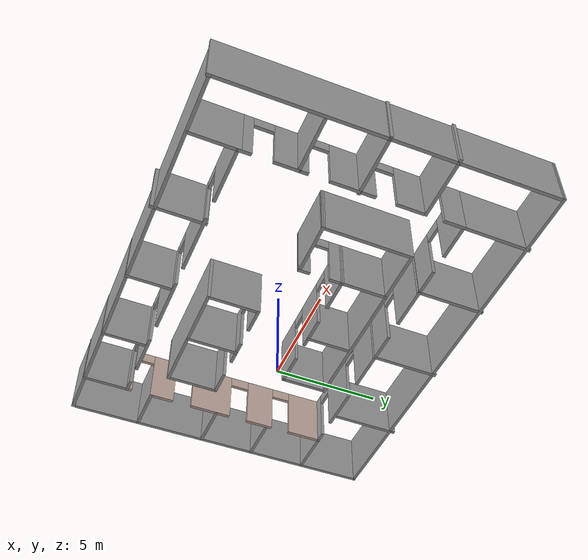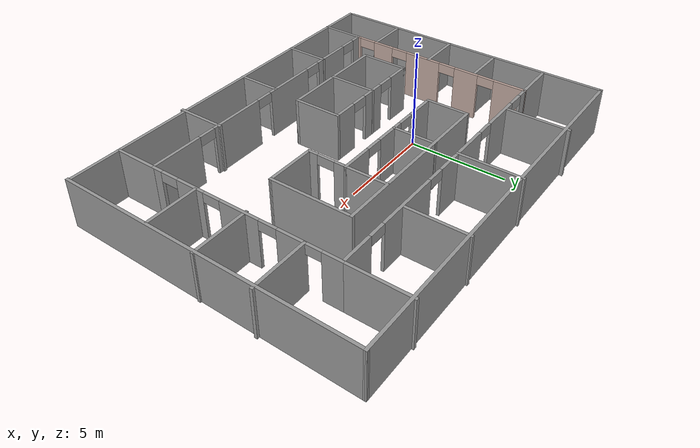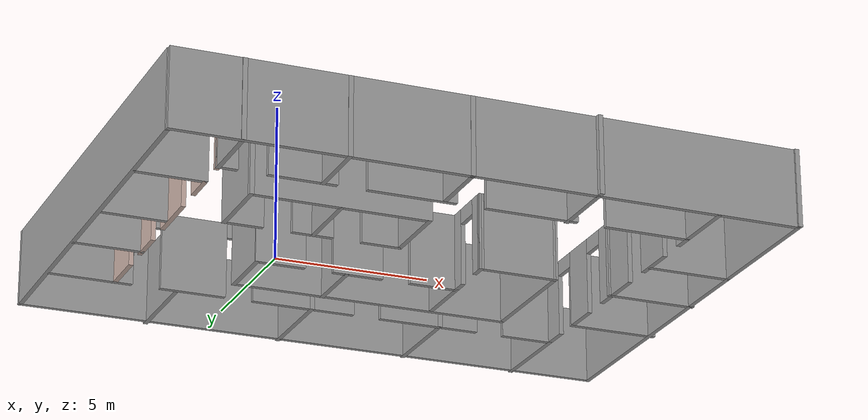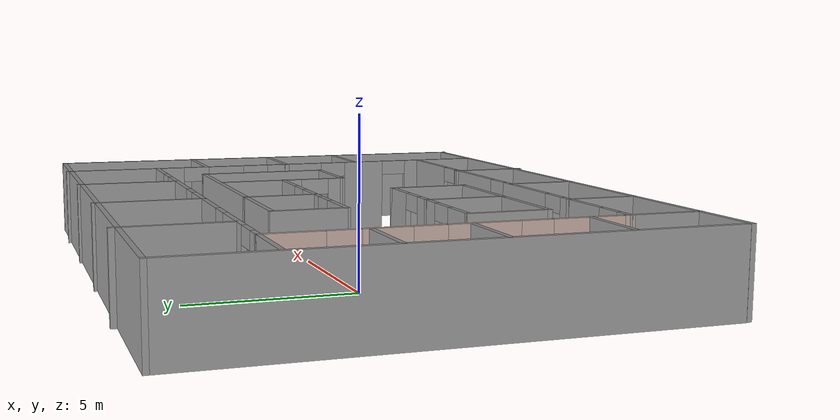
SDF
<?xml version='1.0'?>
<sdf version='1.7'>
  <model name='worlds'>
    <pose>3.85824 -0.689224 0 0 -0 0</pose>
    <link name='Wall_10'>
      <pose>7.08634 -0.417798 0 0 -0 -1.5708</pose>
      <visual name='Wall_10_Visual_0'>
        <pose>-4.49896 0 1.25 0 -0 0</pose>
        <geometry>
          <box>
            <size>1.00207 0.15 2.5</size>
          </box>
        </geometry>
        <material>
          <script>
            <uri>file://media/materials/scripts/gazebo.material</uri>
            <name>Gazebo/Grey</name>
          </script>
          <ambient>1 1 1 1</ambient>
        </material>
        <meta>
          <layer>0</layer>
        </meta>
      </visual>
      <collision name='Wall_10_Collision_0'>
        <geometry>
          <box>
            <size>1.00207 0.15 2.5</size>
          </box>
        </geometry>
        <pose>-4.49896 0 1.25 0 -0 0</pose>
      </collision>
      <visual name='Wall_10_Visual_1'>
        <pose>-2.46294 0 1.25 0 -0 0</pose>
        <geometry>
          <box>
            <size>1.26997 0.15 2.5</size>
          </box>
        </geometry>
        <material>
          <script>
            <uri>file://media/materials/scripts/gazebo.material</uri>
            <name>Gazebo/Grey</name>
          </script>
          <ambient>1 1 1 1</ambient>
        </material>
        <meta>
          <layer>0</layer>
        </meta>
      </visual>
      <collision name='Wall_10_Collision_1'>
        <geometry>
          <box>
            <size>1.26997 0.15 2.5</size>
          </box>
        </geometry>
        <pose>-2.46294 0 1.25 0 -0 0</pose>
      </collision>
      <visual name='Wall_10_Visual_2'>
        <pose>0.096509 0 1.25 0 -0 0</pose>
        <geometry>
          <box>
            <size>2.04893 0.15 2.5</size>
          </box>
        </geometry>
        <material>
          <script>
            <uri>file://media/materials/scripts/gazebo.material</uri>
            <name>Gazebo/Grey</name>
          </script>
          <ambient>1 1 1 1</ambient>
        </material>
        <meta>
          <layer>0</layer>
        </meta>
      </visual>
      <collision name='Wall_10_Collision_2'>
        <geometry>
          <box>
            <size>2.04893 0.15 2.5</size>
          </box>
        </geometry>
        <pose>0.096509 0 1.25 0 -0 0</pose>
      </collision>
      <visual name='Wall_10_Visual_3'>
        <pose>2.76724 0 1.25 0 -0 0</pose>
        <geometry>
          <box>
            <size>1.49253 0.15 2.5</size>
          </box>
        </geometry>
        <material>
          <script>
            <uri>file://media/materials/scripts/gazebo.material</uri>
            <name>Gazebo/Grey</name>
          </script>
          <ambient>1 1 1 1</ambient>
        </material>
        <meta>
          <layer>0</layer>
        </meta>
      </visual>
      <collision name='Wall_10_Collision_3'>
        <geometry>
          <box>
            <size>1.49253 0.15 2.5</size>
          </box>
        </geometry>
        <pose>2.76724 0 1.25 0 -0 0</pose>
      </collision>
      <visual name='Wall_10_Visual_4'>
        <pose>4.70675 0 1.25 0 -0 0</pose>
        <geometry>
          <box>
            <size>0.586492 0.15 2.5</size>
          </box>
        </geometry>
        <material>
          <script>
            <uri>file://media/materials/scripts/gazebo.material</uri>
            <name>Gazebo/Grey</name>
          </script>
          <ambient>1 1 1 1</ambient>
        </material>
        <meta>
          <layer>0</layer>
        </meta>
      </visual>
      <collision name='Wall_10_Collision_4'>
        <geometry>
          <box>
            <size>0.586492 0.15 2.5</size>
          </box>
        </geometry>
        <pose>4.70675 0 1.25 0 -0 0</pose>
      </collision>
      <visual name='Wall_10_Visual_5'>
        <pose>-3.54793 0 2.25 0 -0 0</pose>
        <geometry>
          <box>
            <size>0.9 0.15 0.5</size>
          </box>
        </geometry>
        <material>
          <script>
            <uri>file://media/materials/scripts/gazebo.material</uri>
            <name>Gazebo/Grey</name>
          </script>
          <ambient>1 1 1 1</ambient>
        </material>
        <meta>
          <layer>0</layer>
        </meta>
      </visual>
      <collision name='Wall_10_Collision_5'>
        <geometry>
          <box>
            <size>0.9 0.15 0.5</size>
          </box>
        </geometry>
        <pose>-3.54793 0 2.25 0 -0 0</pose>
      </collision>
      <visual name='Wall_10_Visual_6'>
        <pose>-1.37796 0 2.25 0 -0 0</pose>
        <geometry>
          <box>
            <size>0.9 0.15 0.5</size>
          </box>
        </geometry>
        <material>
          <script>
            <uri>file://media/materials/scripts/gazebo.material</uri>
            <name>Gazebo/Grey</name>
          </script>
          <ambient>1 1 1 1</ambient>
        </material>
        <meta>
          <layer>0</layer>
        </meta>
      </visual>
      <collision name='Wall_10_Collision_6'>
        <geometry>
          <box>
            <size>0.9 0.15 0.5</size>
          </box>
        </geometry>
        <pose>-1.37796 0 2.25 0 -0 0</pose>
      </collision>
      <visual name='Wall_10_Visual_7'>
        <pose>1.57098 0 2.25 0 -0 0</pose>
        <geometry>
          <box>
            <size>0.9 0.15 0.5</size>
          </box>
        </geometry>
        <material>
          <script>
            <uri>file://media/materials/scripts/gazebo.material</uri>
            <name>Gazebo/Grey</name>
          </script>
          <ambient>1 1 1 1</ambient>
        </material>
        <meta>
          <layer>0</layer>
        </meta>
      </visual>
      <collision name='Wall_10_Collision_7'>
        <geometry>
          <box>
            <size>0.9 0.15 0.5</size>
          </box>
        </geometry>
        <pose>1.57098 0 2.25 0 -0 0</pose>
      </collision>
      <visual name='Wall_10_Visual_8'>
        <pose>3.96351 0 2.25 0 -0 0</pose>
        <geometry>
          <box>
            <size>0.9 0.15 0.5</size>
          </box>
        </geometry>
        <material>
          <script>
            <uri>file://media/materials/scripts/gazebo.material</uri>
            <name>Gazebo/Grey</name>
          </script>
          <ambient>1 1 1 1</ambient>
        </material>
        <meta>
          <layer>0</layer>
        </meta>
      </visual>
      <collision name='Wall_10_Collision_8'>
        <geometry>
          <box>
            <size>0.9 0.15 0.5</size>
          </box>
        </geometry>
        <pose>3.96351 0 2.25 0 -0 0</pose>
      </collision>
    </link>
    <link name='Wall_12'>
      <pose>-7.77388 -0.461121 0 0 -0 -1.57285</pose>
      <visual name='Wall_12_Visual_0'>
        <pose>-4.18081 0 1.25 0 -0 0</pose>
        <geometry>
          <box>
            <size>1.72504 0.15 2.5</size>
          </box>
        </geometry>
        <material>
          <script>
            <uri>file://media/materials/scripts/gazebo.material</uri>
            <name>Gazebo/Grey</name>
          </script>
          <ambient>0.760784 0.662745 0.627451 1</ambient>
        </material>
        <meta>
          <layer>0</layer>
        </meta>
      </visual>
      <collision name='Wall_12_Collision_0'>
        <geometry>
          <box>
            <size>1.72504 0.15 2.5</size>
          </box>
        </geometry>
        <pose>-4.18081 0 1.25 0 -0 0</pose>
      </collision>
      <visual name='Wall_12_Visual_1'>
        <pose>-1.7556 0 1.25 0 -0 0</pose>
        <geometry>
          <box>
            <size>1.32538 0.15 2.5</size>
          </box>
        </geometry>
        <material>
          <script>
            <uri>file://media/materials/scripts/gazebo.material</uri>
            <name>Gazebo/Grey</name>
          </script>
          <ambient>0.760784 0.662745 0.627451 1</ambient>
        </material>
        <meta>
          <layer>0</layer>
        </meta>
      </visual>
      <collision name='Wall_12_Collision_1'>
        <geometry>
          <box>
            <size>1.32538 0.15 2.5</size>
          </box>
        </geometry>
        <pose>-1.7556 0 1.25 0 -0 0</pose>
      </collision>
      <visual name='Wall_12_Visual_2'>
        <pose>0.8039 0 1.25 0 -0 0</pose>
        <geometry>
          <box>
            <size>1.99363 0.15 2.5</size>
          </box>
        </geometry>
        <material>
          <script>
            <uri>file://media/materials/scripts/gazebo.material</uri>
            <name>Gazebo/Grey</name>
          </script>
          <ambient>0.760784 0.662745 0.627451 1</ambient>
        </material>
        <meta>
          <layer>0</layer>
        </meta>
      </visual>
      <collision name='Wall_12_Collision_2'>
        <geometry>
          <box>
            <size>1.99363 0.15 2.5</size>
          </box>
        </geometry>
        <pose>0.8039 0 1.25 0 -0 0</pose>
      </collision>
      <visual name='Wall_12_Visual_3'>
        <pose>3.28089 0 1.25 0 -0 0</pose>
        <geometry>
          <box>
            <size>1.16034 0.15 2.5</size>
          </box>
        </geometry>
        <material>
          <script>
            <uri>file://media/materials/scripts/gazebo.material</uri>
            <name>Gazebo/Grey</name>
          </script>
          <ambient>0.760784 0.662745 0.627451 1</ambient>
        </material>
        <meta>
          <layer>0</layer>
        </meta>
      </visual>
      <collision name='Wall_12_Collision_3'>
        <geometry>
          <box>
            <size>1.16034 0.15 2.5</size>
          </box>
        </geometry>
        <pose>3.28089 0 1.25 0 -0 0</pose>
      </collision>
      <visual name='Wall_12_Visual_4'>
        <pose>4.90219 0 1.25 0 -0 0</pose>
        <geometry>
          <box>
            <size>0.282275 0.15 2.5</size>
          </box>
        </geometry>
        <material>
          <script>
            <uri>file://media/materials/scripts/gazebo.material</uri>
            <name>Gazebo/Grey</name>
          </script>
          <ambient>0.760784 0.662745 0.627451 1</ambient>
        </material>
        <meta>
          <layer>0</layer>
        </meta>
      </visual>
      <collision name='Wall_12_Collision_4'>
        <geometry>
          <box>
            <size>0.282275 0.15 2.5</size>
          </box>
        </geometry>
        <pose>4.90219 0 1.25 0 -0 0</pose>
      </collision>
      <visual name='Wall_12_Visual_5'>
        <pose>-2.86829 0 2.25 0 -0 0</pose>
        <geometry>
          <box>
            <size>0.9 0.15 0.5</size>
          </box>
        </geometry>
        <material>
          <script>
            <uri>file://media/materials/scripts/gazebo.material</uri>
            <name>Gazebo/Grey</name>
          </script>
          <ambient>0.760784 0.662745 0.627451 1</ambient>
        </material>
        <meta>
          <layer>0</layer>
        </meta>
      </visual>
      <collision name='Wall_12_Collision_5'>
        <geometry>
          <box>
            <size>0.9 0.15 0.5</size>
          </box>
        </geometry>
        <pose>-2.86829 0 2.25 0 -0 0</pose>
      </collision>
      <visual name='Wall_12_Visual_6'>
        <pose>-0.642915 0 2.25 0 -0 0</pose>
        <geometry>
          <box>
            <size>0.9 0.15 0.5</size>
          </box>
        </geometry>
        <material>
          <script>
            <uri>file://media/materials/scripts/gazebo.material</uri>
            <name>Gazebo/Grey</name>
          </script>
          <ambient>0.760784 0.662745 0.627451 1</ambient>
        </material>
        <meta>
          <layer>0</layer>
        </meta>
      </visual>
      <collision name='Wall_12_Collision_6'>
        <geometry>
          <box>
            <size>0.9 0.15 0.5</size>
          </box>
        </geometry>
        <pose>-0.642915 0 2.25 0 -0 0</pose>
      </collision>
      <visual name='Wall_12_Visual_7'>
        <pose>2.25072 0 2.25 0 -0 0</pose>
        <geometry>
          <box>
            <size>0.9 0.15 0.5</size>
          </box>
        </geometry>
        <material>
          <script>
            <uri>file://media/materials/scripts/gazebo.material</uri>
            <name>Gazebo/Grey</name>
          </script>
          <ambient>0.760784 0.662745 0.627451 1</ambient>
        </material>
        <meta>
          <layer>0</layer>
        </meta>
      </visual>
      <collision name='Wall_12_Collision_7'>
        <geometry>
          <box>
            <size>0.9 0.15 0.5</size>
          </box>
        </geometry>
        <pose>2.25072 0 2.25 0 -0 0</pose>
      </collision>
      <visual name='Wall_12_Visual_8'>
        <pose>4.31106 0 2.25 0 -0 0</pose>
        <geometry>
          <box>
            <size>0.9 0.15 0.5</size>
          </box>
        </geometry>
        <material>
          <script>
            <uri>file://media/materials/scripts/gazebo.material</uri>
            <name>Gazebo/Grey</name>
          </script>
          <ambient>0.760784 0.662745 0.627451 1</ambient>
        </material>
        <meta>
          <layer>0</layer>
        </meta>
      </visual>
      <collision name='Wall_12_Collision_8'>
        <geometry>
          <box>
            <size>0.9 0.15 0.5</size>
          </box>
        </geometry>
        <pose>4.31106 0 2.25 0 -0 0</pose>
      </collision>
    </link>
    <link name='Wall_14'>
      <collision name='Wall_14_Collision'>
        <geometry>
          <box>
            <size>15 0.15 2.5</size>
          </box>
        </geometry>
        <pose>0 0 1.25 0 -0 0</pose>
      </collision>
      <visual name='Wall_14_Visual'>
        <pose>0 0 1.25 0 -0 0</pose>
        <geometry>
          <box>
            <size>15 0.15 2.5</size>
          </box>
        </geometry>
        <material>
          <script>
            <uri>file://media/materials/scripts/gazebo.material</uri>
            <name>Gazebo/Grey</name>
          </script>
          <ambient>1 1 1 1</ambient>
        </material>
        <meta>
          <layer>0</layer>
        </meta>
      </visual>
      <pose>-9.96001 0.085928 0 0 -0 -1.5708</pose>
    </link>
    <link name='Wall_16'>
      <collision name='Wall_16_Collision'>
        <geometry>
          <box>
            <size>20 0.15 2.5</size>
          </box>
        </geometry>
        <pose>0 0 1.25 0 -0 0</pose>
      </collision>
      <visual name='Wall_16_Visual'>
        <pose>0 0 1.25 0 -0 0</pose>
        <geometry>
          <box>
            <size>20 0.15 2.5</size>
          </box>
        </geometry>
        <material>
          <script>
            <uri>file://media/materials/scripts/gazebo.material</uri>
            <name>Gazebo/Grey</name>
          </script>
          <ambient>1 1 1 1</ambient>
        </material>
        <meta>
          <layer>0</layer>
        </meta>
      </visual>
      <pose>-0.035012 7.51093 0 0 -0 0</pose>
    </link>
    <link name='Wall_18'>
      <collision name='Wall_18_Collision'>
        <geometry>
          <box>
            <size>15.2354 0.15 2.5</size>
          </box>
        </geometry>
        <pose>0 0 1.25 0 -0 0</pose>
      </collision>
      <visual name='Wall_18_Visual'>
        <pose>0 0 1.25 0 -0 0</pose>
        <geometry>
          <box>
            <size>15.2354 0.15 2.5</size>
          </box>
        </geometry>
        <material>
          <script>
            <uri>file://media/materials/scripts/gazebo.material</uri>
            <name>Gazebo/Grey</name>
          </script>
          <ambient>1 1 1 1</ambient>
        </material>
        <meta>
          <layer>0</layer>
        </meta>
      </visual>
      <pose>9.80829 -0.031344 0 0 -0 -1.58163</pose>
    </link>
    <link name='Wall_19'>
      <collision name='Wall_19_Collision'>
        <geometry>
          <box>
            <size>19.75 0.15 2.5</size>
          </box>
        </geometry>
        <pose>0 0 1.25 0 -0 0</pose>
      </collision>
      <visual name='Wall_19_Visual'>
        <pose>0 0 1.25 0 -0 0</pose>
        <geometry>
          <box>
            <size>19.75 0.15 2.5</size>
          </box>
        </geometry>
        <material>
          <script>
            <uri>file://media/materials/scripts/gazebo.material</uri>
            <name>Gazebo/Grey</name>
          </script>
          <ambient>1 1 1 1</ambient>
        </material>
        <meta>
          <layer>0</layer>
        </meta>
      </visual>
      <pose>-0.134737 -7.51228 0 0 -0 3.14159</pose>
    </link>
    <link name='Wall_21'>
      <collision name='Wall_21_Collision'>
        <geometry>
          <box>
            <size>3.25 0.15 2.5</size>
          </box>
        </geometry>
        <pose>0 0 1.25 0 -0 0</pose>
      </collision>
      <visual name='Wall_21_Visual'>
        <pose>0 0 1.25 0 -0 0</pose>
        <geometry>
          <box>
            <size>3.25 0.15 2.5</size>
          </box>
        </geometry>
        <material>
          <script>
            <uri>file://media/materials/scripts/gazebo.material</uri>
            <name>Gazebo/Grey</name>
          </script>
          <ambient>1 1 1 1</ambient>
        </material>
        <meta>
          <layer>0</layer>
        </meta>
      </visual>
      <pose>-5.73967 6.12837 0 0 -0 1.5708</pose>
    </link>
    <link name='Wall_25'>
      <collision name='Wall_25_Collision'>
        <geometry>
          <box>
            <size>3.25 0.15 2.5</size>
          </box>
        </geometry>
        <pose>0 0 1.25 0 -0 0</pose>
      </collision>
      <visual name='Wall_25_Visual'>
        <pose>0 0 1.25 0 -0 0</pose>
        <geometry>
          <box>
            <size>3.25 0.15 2.5</size>
          </box>
        </geometry>
        <material>
          <script>
            <uri>file://media/materials/scripts/gazebo.material</uri>
            <name>Gazebo/Grey</name>
          </script>
          <ambient>1 1 1 1</ambient>
        </material>
        <meta>
          <layer>0</layer>
        </meta>
      </visual>
      <pose>-1.24283 6.05431 0 0 -0 1.5708</pose>
    </link>
    <link name='Wall_27'>
      <collision name='Wall_27_Collision'>
        <geometry>
          <box>
            <size>3.25 0.15 2.5</size>
          </box>
        </geometry>
        <pose>0 0 1.25 0 -0 0</pose>
      </collision>
      <visual name='Wall_27_Visual'>
        <pose>0 0 1.25 0 -0 0</pose>
        <geometry>
          <box>
            <size>3.25 0.15 2.5</size>
          </box>
        </geometry>
        <material>
          <script>
            <uri>file://media/materials/scripts/gazebo.material</uri>
            <name>Gazebo/Grey</name>
          </script>
          <ambient>1 1 1 1</ambient>
        </material>
        <meta>
          <layer>0</layer>
        </meta>
      </visual>
      <pose>3.16253 6.04065 0 0 -0 -1.5708</pose>
    </link>
    <link name='Wall_29'>
      <collision name='Wall_29_Collision'>
        <geometry>
          <box>
            <size>3.25 0.15 2.5</size>
          </box>
        </geometry>
        <pose>0 0 1.25 0 -0 0</pose>
      </collision>
      <visual name='Wall_29_Visual'>
        <pose>0 0 1.25 0 -0 0</pose>
        <geometry>
          <box>
            <size>3.25 0.15 2.5</size>
          </box>
        </geometry>
        <material>
          <script>
            <uri>file://media/materials/scripts/gazebo.material</uri>
            <name>Gazebo/Grey</name>
          </script>
          <ambient>1 1 1 1</ambient>
        </material>
        <meta>
          <layer>0</layer>
        </meta>
      </visual>
      <pose>7.08634 6.0572 0 0 -0 1.5708</pose>
    </link>
    <link name='Wall_31'>
      <collision name='Wall_31_Collision'>
        <geometry>
          <box>
            <size>3 0.15 2.5</size>
          </box>
        </geometry>
        <pose>0 0 1.25 0 -0 0</pose>
      </collision>
      <visual name='Wall_31_Visual'>
        <pose>0 0 1.25 0 -0 0</pose>
        <geometry>
          <box>
            <size>3 0.15 2.5</size>
          </box>
        </geometry>
        <material>
          <script>
            <uri>file://media/materials/scripts/gazebo.material</uri>
            <name>Gazebo/Grey</name>
          </script>
          <ambient>1 1 1 1</ambient>
        </material>
        <meta>
          <layer>0</layer>
        </meta>
      </visual>
      <pose>8.53501 2.74602 0 0 -0 0</pose>
    </link>
    <link name='Wall_33'>
      <collision name='Wall_33_Collision'>
        <geometry>
          <box>
            <size>3 0.15 2.5</size>
          </box>
        </geometry>
        <pose>0 0 1.25 0 -0 0</pose>
      </collision>
      <visual name='Wall_33_Visual'>
        <pose>0 0 1.25 0 -0 0</pose>
        <geometry>
          <box>
            <size>3 0.15 2.5</size>
          </box>
        </geometry>
        <material>
          <script>
            <uri>file://media/materials/scripts/gazebo.material</uri>
            <name>Gazebo/Grey</name>
          </script>
          <ambient>1 1 1 1</ambient>
        </material>
        <meta>
          <layer>0</layer>
        </meta>
      </visual>
      <pose>8.4453 -0.214591 0 0 -0 0</pose>
    </link>
    <link name='Wall_35'>
      <collision name='Wall_35_Collision'>
        <geometry>
          <box>
            <size>2.75 0.15 2.5</size>
          </box>
        </geometry>
        <pose>0 0 1.25 0 -0 0</pose>
      </collision>
      <visual name='Wall_35_Visual'>
        <pose>0 0 1.25 0 -0 0</pose>
        <geometry>
          <box>
            <size>2.75 0.15 2.5</size>
          </box>
        </geometry>
        <material>
          <script>
            <uri>file://media/materials/scripts/gazebo.material</uri>
            <name>Gazebo/Grey</name>
          </script>
          <ambient>1 1 1 1</ambient>
        </material>
        <meta>
          <layer>0</layer>
        </meta>
      </visual>
      <pose>8.45487 -2.8612 0 0 -0 0</pose>
    </link>
    <link name='Wall_37'>
      <collision name='Wall_37_Collision'>
        <geometry>
          <box>
            <size>2.25 0.15 2.5</size>
          </box>
        </geometry>
        <pose>0 0 1.25 0 -0 0</pose>
      </collision>
      <visual name='Wall_37_Visual'>
        <pose>0 0 1.25 0 -0 0</pose>
        <geometry>
          <box>
            <size>2.25 0.15 2.5</size>
          </box>
        </geometry>
        <material>
          <script>
            <uri>file://media/materials/scripts/gazebo.material</uri>
            <name>Gazebo/Grey</name>
          </script>
          <ambient>1 1 1 1</ambient>
        </material>
        <meta>
          <layer>0</layer>
        </meta>
      </visual>
      <pose>7.08634 -6.3928 0 0 -0 -1.5708</pose>
    </link>
    <link name='Wall_39'>
      <collision name='Wall_39_Collision'>
        <geometry>
          <box>
            <size>2.5 0.15 2.5</size>
          </box>
        </geometry>
        <pose>0 0 1.25 0 -0 0</pose>
      </collision>
      <visual name='Wall_39_Visual'>
        <pose>0 0 1.25 0 -0 0</pose>
        <geometry>
          <box>
            <size>2.5 0.15 2.5</size>
          </box>
        </geometry>
        <material>
          <script>
            <uri>file://media/materials/scripts/gazebo.material</uri>
            <name>Gazebo/Grey</name>
          </script>
          <ambient>1 1 1 1</ambient>
        </material>
        <meta>
          <layer>0</layer>
        </meta>
      </visual>
      <pose>3.16253 -6.50337 0 0 -0 -1.5708</pose>
    </link>
    <link name='Wall_41'>
      <collision name='Wall_41_Collision'>
        <geometry>
          <box>
            <size>2.25 0.15 2.5</size>
          </box>
        </geometry>
        <pose>0 0 1.25 0 -0 0</pose>
      </collision>
      <visual name='Wall_41_Visual'>
        <pose>0 0 1.25 0 -0 0</pose>
        <geometry>
          <box>
            <size>2.25 0.15 2.5</size>
          </box>
        </geometry>
        <material>
          <script>
            <uri>file://media/materials/scripts/gazebo.material</uri>
            <name>Gazebo/Grey</name>
          </script>
          <ambient>1 1 1 1</ambient>
        </material>
        <meta>
          <layer>0</layer>
        </meta>
      </visual>
      <pose>-0.829803 -6.46809 0 0 -0 -1.5708</pose>
    </link>
    <link name='Wall_43'>
      <collision name='Wall_43_Collision'>
        <geometry>
          <box>
            <size>2.25 0.15 2.5</size>
          </box>
        </geometry>
        <pose>0 0 1.25 0 -0 0</pose>
      </collision>
      <visual name='Wall_43_Visual'>
        <pose>0 0 1.25 0 -0 0</pose>
        <geometry>
          <box>
            <size>2.25 0.15 2.5</size>
          </box>
        </geometry>
        <material>
          <script>
            <uri>file://media/materials/scripts/gazebo.material</uri>
            <name>Gazebo/Grey</name>
          </script>
          <ambient>1 1 1 1</ambient>
        </material>
        <meta>
          <layer>0</layer>
        </meta>
      </visual>
      <pose>-4.59785 -6.46809 0 0 -0 -1.5708</pose>
    </link>
    <link name='Wall_45'>
      <collision name='Wall_45_Collision'>
        <geometry>
          <box>
            <size>2.25 0.15 2.5</size>
          </box>
        </geometry>
        <pose>0 0 1.25 0 -0 0</pose>
      </collision>
      <visual name='Wall_45_Visual'>
        <pose>0 0 1.25 0 -0 0</pose>
        <geometry>
          <box>
            <size>2.25 0.15 2.5</size>
          </box>
        </geometry>
        <material>
          <script>
            <uri>file://media/materials/scripts/gazebo.material</uri>
            <name>Gazebo/Grey</name>
          </script>
          <ambient>1 1 1 1</ambient>
        </material>
        <meta>
          <layer>0</layer>
        </meta>
      </visual>
      <pose>-7.7841 -6.47944 0 0 -0 -1.5708</pose>
    </link>
    <link name='Wall_49'>
      <collision name='Wall_49_Collision'>
        <geometry>
          <box>
            <size>2.25 0.15 2.5</size>
          </box>
        </geometry>
        <pose>0 0 1.25 0 -0 0</pose>
      </collision>
      <visual name='Wall_49_Visual'>
        <pose>0 0 1.25 0 -0 0</pose>
        <geometry>
          <box>
            <size>2.25 0.15 2.5</size>
          </box>
        </geometry>
        <material>
          <script>
            <uri>file://media/materials/scripts/gazebo.material</uri>
            <name>Gazebo/Grey</name>
          </script>
          <ambient>1 1 1 1</ambient>
        </material>
        <meta>
          <layer>0</layer>
        </meta>
      </visual>
      <pose>-8.83275 -4.25178 0 0 -0 3.14159</pose>
    </link>
    <link name='Wall_53'>
      <collision name='Wall_53_Collision'>
        <geometry>
          <box>
            <size>2.25 0.15 2.5</size>
          </box>
        </geometry>
        <pose>0 0 1.25 0 -0 0</pose>
      </collision>
      <visual name='Wall_53_Visual'>
        <pose>0 0 1.25 0 -0 0</pose>
        <geometry>
          <box>
            <size>2.25 0.15 2.5</size>
          </box>
        </geometry>
        <material>
          <script>
            <uri>file://media/materials/scripts/gazebo.material</uri>
            <name>Gazebo/Grey</name>
          </script>
          <ambient>1 1 1 1</ambient>
        </material>
        <meta>
          <layer>0</layer>
        </meta>
      </visual>
      <pose>-8.84106 -0.932314 0 0 -0 0</pose>
    </link>
    <link name='Wall_55'>
      <collision name='Wall_55_Collision'>
        <geometry>
          <box>
            <size>2.25 0.15 2.5</size>
          </box>
        </geometry>
        <pose>0 0 1.25 0 -0 0</pose>
      </collision>
      <visual name='Wall_55_Visual'>
        <pose>0 0 1.25 0 -0 0</pose>
        <geometry>
          <box>
            <size>2.25 0.15 2.5</size>
          </box>
        </geometry>
        <material>
          <script>
            <uri>file://media/materials/scripts/gazebo.material</uri>
            <name>Gazebo/Grey</name>
          </script>
          <ambient>1 1 1 1</ambient>
        </material>
        <meta>
          <layer>0</layer>
        </meta>
      </visual>
      <pose>-8.84106 1.71429 0 0 -0 0</pose>
    </link>
    <link name='Wall_57'>
      <collision name='Wall_57_Collision'>
        <geometry>
          <box>
            <size>2.23258 0.15 2.5</size>
          </box>
        </geometry>
        <pose>0 0 1.25 0 -0 0</pose>
      </collision>
      <visual name='Wall_57_Visual'>
        <pose>0 0 1.25 0 -0 0</pose>
        <geometry>
          <box>
            <size>2.23258 0.15 2.5</size>
          </box>
        </geometry>
        <material>
          <script>
            <uri>file://media/materials/scripts/gazebo.material</uri>
            <name>Gazebo/Grey</name>
          </script>
          <ambient>1 1 1 1</ambient>
        </material>
        <meta>
          <layer>0</layer>
        </meta>
      </visual>
      <pose>-8.80493 4.50134 0 0 -0 0.005634</pose>
    </link>
    <link name='Wall_59'>
      <collision name='Wall_59_Collision'>
        <geometry>
          <box>
            <size>9.25 0.15 2.5</size>
          </box>
        </geometry>
        <pose>0 0 1.25 0 -0 0</pose>
      </collision>
      <visual name='Wall_59_Visual'>
        <pose>0 0 1.25 0 -0 0</pose>
        <geometry>
          <box>
            <size>9.25 0.15 2.5</size>
          </box>
        </geometry>
        <material>
          <script>
            <uri>file://media/materials/scripts/gazebo.material</uri>
            <name>Gazebo/Grey</name>
          </script>
          <ambient>1 1 1 1</ambient>
        </material>
        <meta>
          <layer>0</layer>
        </meta>
      </visual>
      <pose>0.280194 3.27344 0 0 -0 0</pose>
    </link>
    <link name='Wall_6'>
      <pose>-0.338657 4.5072 0 0 -0 0</pose>
      <visual name='Wall_6_Visual_0'>
        <pose>-7.18514 0 1.25 0 -0 0</pose>
        <geometry>
          <box>
            <size>0.629721 0.15 2.5</size>
          </box>
        </geometry>
        <material>
          <script>
            <uri>file://media/materials/scripts/gazebo.material</uri>
            <name>Gazebo/Grey</name>
          </script>
          <ambient>1 1 1 1</ambient>
        </material>
        <meta>
          <layer>0</layer>
        </meta>
      </visual>
      <collision name='Wall_6_Collision_0'>
        <geometry>
          <box>
            <size>0.629721 0.15 2.5</size>
          </box>
        </geometry>
        <pose>-7.18514 0 1.25 0 -0 0</pose>
      </collision>
      <visual name='Wall_6_Visual_1'>
        <pose>-4.89017 0 1.25 0 -0 0</pose>
        <geometry>
          <box>
            <size>2.16021 0.15 2.5</size>
          </box>
        </geometry>
        <material>
          <script>
            <uri>file://media/materials/scripts/gazebo.material</uri>
            <name>Gazebo/Grey</name>
          </script>
          <ambient>1 1 1 1</ambient>
        </material>
        <meta>
          <layer>0</layer>
        </meta>
      </visual>
      <collision name='Wall_6_Collision_1'>
        <geometry>
          <box>
            <size>2.16021 0.15 2.5</size>
          </box>
        </geometry>
        <pose>-4.89017 0 1.25 0 -0 0</pose>
      </collision>
      <visual name='Wall_6_Visual_2'>
        <pose>-1.19009 0 1.25 0 -0 0</pose>
        <geometry>
          <box>
            <size>3.43994 0.15 2.5</size>
          </box>
        </geometry>
        <material>
          <script>
            <uri>file://media/materials/scripts/gazebo.material</uri>
            <name>Gazebo/Grey</name>
          </script>
          <ambient>1 1 1 1</ambient>
        </material>
        <meta>
          <layer>0</layer>
        </meta>
      </visual>
      <collision name='Wall_6_Collision_2'>
        <geometry>
          <box>
            <size>3.43994 0.15 2.5</size>
          </box>
        </geometry>
        <pose>-1.19009 0 1.25 0 -0 0</pose>
      </collision>
      <visual name='Wall_6_Visual_3'>
        <pose>3.12203 0 1.25 0 -0 0</pose>
        <geometry>
          <box>
            <size>3.3843 0.15 2.5</size>
          </box>
        </geometry>
        <material>
          <script>
            <uri>file://media/materials/scripts/gazebo.material</uri>
            <name>Gazebo/Grey</name>
          </script>
          <ambient>1 1 1 1</ambient>
        </material>
        <meta>
          <layer>0</layer>
        </meta>
      </visual>
      <collision name='Wall_6_Collision_3'>
        <geometry>
          <box>
            <size>3.3843 0.15 2.5</size>
          </box>
        </geometry>
        <pose>3.12203 0 1.25 0 -0 0</pose>
      </collision>
      <visual name='Wall_6_Visual_4'>
        <pose>6.60709 0 1.25 0 -0 0</pose>
        <geometry>
          <box>
            <size>1.78582 0.15 2.5</size>
          </box>
        </geometry>
        <material>
          <script>
            <uri>file://media/materials/scripts/gazebo.material</uri>
            <name>Gazebo/Grey</name>
          </script>
          <ambient>1 1 1 1</ambient>
        </material>
        <meta>
          <layer>0</layer>
        </meta>
      </visual>
      <collision name='Wall_6_Collision_4'>
        <geometry>
          <box>
            <size>1.78582 0.15 2.5</size>
          </box>
        </geometry>
        <pose>6.60709 0 1.25 0 -0 0</pose>
      </collision>
      <visual name='Wall_6_Visual_5'>
        <pose>-6.42028 0 2.25 0 -0 0</pose>
        <geometry>
          <box>
            <size>0.9 0.15 0.5</size>
          </box>
        </geometry>
        <material>
          <script>
            <uri>file://media/materials/scripts/gazebo.material</uri>
            <name>Gazebo/Grey</name>
          </script>
          <ambient>1 1 1 1</ambient>
        </material>
        <meta>
          <layer>0</layer>
        </meta>
      </visual>
      <collision name='Wall_6_Collision_5'>
        <geometry>
          <box>
            <size>0.9 0.15 0.5</size>
          </box>
        </geometry>
        <pose>-6.42028 0 2.25 0 -0 0</pose>
      </collision>
      <visual name='Wall_6_Visual_6'>
        <pose>-3.36006 0 2.25 0 -0 0</pose>
        <geometry>
          <box>
            <size>0.9 0.15 0.5</size>
          </box>
        </geometry>
        <material>
          <script>
            <uri>file://media/materials/scripts/gazebo.material</uri>
            <name>Gazebo/Grey</name>
          </script>
          <ambient>1 1 1 1</ambient>
        </material>
        <meta>
          <layer>0</layer>
        </meta>
      </visual>
      <collision name='Wall_6_Collision_6'>
        <geometry>
          <box>
            <size>0.9 0.15 0.5</size>
          </box>
        </geometry>
        <pose>-3.36006 0 2.25 0 -0 0</pose>
      </collision>
      <visual name='Wall_6_Visual_7'>
        <pose>0.979877 0 2.25 0 -0 0</pose>
        <geometry>
          <box>
            <size>0.9 0.15 0.5</size>
          </box>
        </geometry>
        <material>
          <script>
            <uri>file://media/materials/scripts/gazebo.material</uri>
            <name>Gazebo/Grey</name>
          </script>
          <ambient>1 1 1 1</ambient>
        </material>
        <meta>
          <layer>0</layer>
        </meta>
      </visual>
      <collision name='Wall_6_Collision_7'>
        <geometry>
          <box>
            <size>0.9 0.15 0.5</size>
          </box>
        </geometry>
        <pose>0.979877 0 2.25 0 -0 0</pose>
      </collision>
      <visual name='Wall_6_Visual_8'>
        <pose>5.26418 0 2.25 0 -0 0</pose>
        <geometry>
          <box>
            <size>0.9 0.15 0.5</size>
          </box>
        </geometry>
        <material>
          <script>
            <uri>file://media/materials/scripts/gazebo.material</uri>
            <name>Gazebo/Grey</name>
          </script>
          <ambient>1 1 1 1</ambient>
        </material>
        <meta>
          <layer>0</layer>
        </meta>
      </visual>
      <collision name='Wall_6_Collision_8'>
        <geometry>
          <box>
            <size>0.9 0.15 0.5</size>
          </box>
        </geometry>
        <pose>5.26418 0 2.25 0 -0 0</pose>
      </collision>
    </link>
    <link name='Wall_60'>
      <collision name='Wall_60_Collision'>
        <geometry>
          <box>
            <size>4.25 0.15 2.5</size>
          </box>
        </geometry>
        <pose>0 0 1.25 0 -0 0</pose>
      </collision>
      <visual name='Wall_60_Visual'>
        <pose>0 0 1.25 0 -0 0</pose>
        <geometry>
          <box>
            <size>4.25 0.15 2.5</size>
          </box>
        </geometry>
        <material>
          <script>
            <uri>file://media/materials/scripts/gazebo.material</uri>
            <name>Gazebo/Grey</name>
          </script>
          <ambient>1 1 1 1</ambient>
        </material>
        <meta>
          <layer>0</layer>
        </meta>
      </visual>
      <pose>4.83382 1.22706 0 0 -0 -1.5708</pose>
    </link>
    <link name='Wall_61'>
      <collision name='Wall_61_Collision'>
        <geometry>
          <box>
            <size>2.65225 0.15 2.5</size>
          </box>
        </geometry>
        <pose>0 0 1.25 0 -0 0</pose>
      </collision>
      <visual name='Wall_61_Visual'>
        <pose>0 0 1.25 0 -0 0</pose>
        <geometry>
          <box>
            <size>2.65225 0.15 2.5</size>
          </box>
        </geometry>
        <material>
          <script>
            <uri>file://media/materials/scripts/gazebo.material</uri>
            <name>Gazebo/Grey</name>
          </script>
          <ambient>1 1 1 1</ambient>
        </material>
        <meta>
          <layer>0</layer>
        </meta>
      </visual>
      <pose>3.5827 -0.819314 0 0 -0 3.13869</pose>
    </link>
    <link name='Wall_62'>
      <pose>2.33788 0.176584 0 0 -0 1.56445</pose>
      <visual name='Wall_62_Visual_0'>
        <pose>-0.784777 0 1.25 0 -0 0</pose>
        <geometry>
          <box>
            <size>0.565032 0.15 2.5</size>
          </box>
        </geometry>
        <material>
          <script>
            <uri>file://media/materials/scripts/gazebo.material</uri>
            <name>Gazebo/Grey</name>
          </script>
          <ambient>1 1 1 1</ambient>
        </material>
        <meta>
          <layer>0</layer>
        </meta>
      </visual>
      <collision name='Wall_62_Collision_0'>
        <geometry>
          <box>
            <size>0.565032 0.15 2.5</size>
          </box>
        </geometry>
        <pose>-0.784777 0 1.25 0 -0 0</pose>
      </collision>
      <visual name='Wall_62_Visual_1'>
        <pose>0.732516 0 1.25 0 -0 0</pose>
        <geometry>
          <box>
            <size>0.669554 0.15 2.5</size>
          </box>
        </geometry>
        <material>
          <script>
            <uri>file://media/materials/scripts/gazebo.material</uri>
            <name>Gazebo/Grey</name>
          </script>
          <ambient>1 1 1 1</ambient>
        </material>
        <meta>
          <layer>0</layer>
        </meta>
      </visual>
      <collision name='Wall_62_Collision_1'>
        <geometry>
          <box>
            <size>0.669554 0.15 2.5</size>
          </box>
        </geometry>
        <pose>0.732516 0 1.25 0 -0 0</pose>
      </collision>
      <visual name='Wall_62_Visual_2'>
        <pose>-0.052261 0 2.25 0 -0 0</pose>
        <geometry>
          <box>
            <size>0.9 0.15 0.5</size>
          </box>
        </geometry>
        <material>
          <script>
            <uri>file://media/materials/scripts/gazebo.material</uri>
            <name>Gazebo/Grey</name>
          </script>
          <ambient>1 1 1 1</ambient>
        </material>
        <meta>
          <layer>0</layer>
        </meta>
      </visual>
      <collision name='Wall_62_Collision_2'>
        <geometry>
          <box>
            <size>0.9 0.15 0.5</size>
          </box>
        </geometry>
        <pose>-0.052261 0 2.25 0 -0 0</pose>
      </collision>
    </link>
    <link name='Wall_63'>
      <pose>-0.963935 1.17221 0 0 -0 3.14058</pose>
      <visual name='Wall_63_Visual_0'>
        <pose>-2.55215 0 1.25 0 -0 0</pose>
        <geometry>
          <box>
            <size>1.66192 0.15 2.5</size>
          </box>
        </geometry>
        <material>
          <script>
            <uri>file://media/materials/scripts/gazebo.material</uri>
            <name>Gazebo/Grey</name>
          </script>
          <ambient>1 1 1 1</ambient>
        </material>
        <meta>
          <layer>0</layer>
        </meta>
      </visual>
      <collision name='Wall_63_Collision_0'>
        <geometry>
          <box>
            <size>1.66192 0.15 2.5</size>
          </box>
        </geometry>
        <pose>-2.55215 0 1.25 0 -0 0</pose>
      </collision>
      <visual name='Wall_63_Visual_1'>
        <pose>0.008395 0 1.25 0 -0 0</pose>
        <geometry>
          <box>
            <size>1.65917 0.15 2.5</size>
          </box>
        </geometry>
        <material>
          <script>
            <uri>file://media/materials/scripts/gazebo.material</uri>
            <name>Gazebo/Grey</name>
          </script>
          <ambient>1 1 1 1</ambient>
        </material>
        <meta>
          <layer>0</layer>
        </meta>
      </visual>
      <collision name='Wall_63_Collision_1'>
        <geometry>
          <box>
            <size>1.65917 0.15 2.5</size>
          </box>
        </geometry>
        <pose>0.008395 0 1.25 0 -0 0</pose>
      </collision>
      <visual name='Wall_63_Visual_2'>
        <pose>2.56054 0 1.25 0 -0 0</pose>
        <geometry>
          <box>
            <size>1.64513 0.15 2.5</size>
          </box>
        </geometry>
        <material>
          <script>
            <uri>file://media/materials/scripts/gazebo.material</uri>
            <name>Gazebo/Grey</name>
          </script>
          <ambient>1 1 1 1</ambient>
        </material>
        <meta>
          <layer>0</layer>
        </meta>
      </visual>
      <collision name='Wall_63_Collision_2'>
        <geometry>
          <box>
            <size>1.64513 0.15 2.5</size>
          </box>
        </geometry>
        <pose>2.56054 0 1.25 0 -0 0</pose>
      </collision>
      <visual name='Wall_63_Visual_3'>
        <pose>-1.27119 0 2.25 0 -0 0</pose>
        <geometry>
          <box>
            <size>0.9 0.15 0.5</size>
          </box>
        </geometry>
        <material>
          <script>
            <uri>file://media/materials/scripts/gazebo.material</uri>
            <name>Gazebo/Grey</name>
          </script>
          <ambient>1 1 1 1</ambient>
        </material>
        <meta>
          <layer>0</layer>
        </meta>
      </visual>
      <collision name='Wall_63_Collision_3'>
        <geometry>
          <box>
            <size>0.9 0.15 0.5</size>
          </box>
        </geometry>
        <pose>-1.27119 0 2.25 0 -0 0</pose>
      </collision>
      <visual name='Wall_63_Visual_4'>
        <pose>1.28798 0 2.25 0 -0 0</pose>
        <geometry>
          <box>
            <size>0.9 0.15 0.5</size>
          </box>
        </geometry>
        <material>
          <script>
            <uri>file://media/materials/scripts/gazebo.material</uri>
            <name>Gazebo/Grey</name>
          </script>
          <ambient>1 1 1 1</ambient>
        </material>
        <meta>
          <layer>0</layer>
        </meta>
      </visual>
      <collision name='Wall_63_Collision_4'>
        <geometry>
          <box>
            <size>0.9 0.15 0.5</size>
          </box>
        </geometry>
        <pose>1.28798 0 2.25 0 -0 0</pose>
      </collision>
    </link>
    <link name='Wall_64'>
      <collision name='Wall_64_Collision'>
        <geometry>
          <box>
            <size>2.25 0.15 2.5</size>
          </box>
        </geometry>
        <pose>0 0 1.25 0 -0 0</pose>
      </collision>
      <visual name='Wall_64_Visual'>
        <pose>0 0 1.25 0 -0 0</pose>
        <geometry>
          <box>
            <size>2.25 0.15 2.5</size>
          </box>
        </geometry>
        <material>
          <script>
            <uri>file://media/materials/scripts/gazebo.material</uri>
            <name>Gazebo/Grey</name>
          </script>
          <ambient>1 1 1 1</ambient>
        </material>
        <meta>
          <layer>0</layer>
        </meta>
      </visual>
      <pose>-4.27205 2.22919 0 0 -0 1.5708</pose>
    </link>
    <link name='Wall_66'>
      <pose>-3.45079 -1.52008 0 0 -0 0</pose>
      <visual name='Wall_66_Visual_0'>
        <pose>-2.23159 0 1.25 0 -0 0</pose>
        <geometry>
          <box>
            <size>1.28682 0.15 2.5</size>
          </box>
        </geometry>
        <material>
          <script>
            <uri>file://media/materials/scripts/gazebo.material</uri>
            <name>Gazebo/Grey</name>
          </script>
          <ambient>1 1 1 1</ambient>
        </material>
        <meta>
          <layer>0</layer>
        </meta>
      </visual>
      <collision name='Wall_66_Collision_0'>
        <geometry>
          <box>
            <size>1.28682 0.15 2.5</size>
          </box>
        </geometry>
        <pose>-2.23159 0 1.25 0 -0 0</pose>
      </collision>
      <visual name='Wall_66_Visual_1'>
        <pose>-0.025371 0 1.25 0 -0 0</pose>
        <geometry>
          <box>
            <size>1.32561 0.15 2.5</size>
          </box>
        </geometry>
        <material>
          <script>
            <uri>file://media/materials/scripts/gazebo.material</uri>
            <name>Gazebo/Grey</name>
          </script>
          <ambient>1 1 1 1</ambient>
        </material>
        <meta>
          <layer>0</layer>
        </meta>
      </visual>
      <collision name='Wall_66_Collision_1'>
        <geometry>
          <box>
            <size>1.32561 0.15 2.5</size>
          </box>
        </geometry>
        <pose>-0.025371 0 1.25 0 -0 0</pose>
      </collision>
      <visual name='Wall_66_Visual_2'>
        <pose>2.20622 0 1.25 0 -0 0</pose>
        <geometry>
          <box>
            <size>1.33757 0.15 2.5</size>
          </box>
        </geometry>
        <material>
          <script>
            <uri>file://media/materials/scripts/gazebo.material</uri>
            <name>Gazebo/Grey</name>
          </script>
          <ambient>1 1 1 1</ambient>
        </material>
        <meta>
          <layer>0</layer>
        </meta>
      </visual>
      <collision name='Wall_66_Collision_2'>
        <geometry>
          <box>
            <size>1.33757 0.15 2.5</size>
          </box>
        </geometry>
        <pose>2.20622 0 1.25 0 -0 0</pose>
      </collision>
      <visual name='Wall_66_Visual_3'>
        <pose>-1.13818 0 2.25 0 -0 0</pose>
        <geometry>
          <box>
            <size>0.9 0.15 0.5</size>
          </box>
        </geometry>
        <material>
          <script>
            <uri>file://media/materials/scripts/gazebo.material</uri>
            <name>Gazebo/Grey</name>
          </script>
          <ambient>1 1 1 1</ambient>
        </material>
        <meta>
          <layer>0</layer>
        </meta>
      </visual>
      <collision name='Wall_66_Collision_3'>
        <geometry>
          <box>
            <size>0.9 0.15 0.5</size>
          </box>
        </geometry>
        <pose>-1.13818 0 2.25 0 -0 0</pose>
      </collision>
      <visual name='Wall_66_Visual_4'>
        <pose>1.08743 0 2.25 0 -0 0</pose>
        <geometry>
          <box>
            <size>0.9 0.15 0.5</size>
          </box>
        </geometry>
        <material>
          <script>
            <uri>file://media/materials/scripts/gazebo.material</uri>
            <name>Gazebo/Grey</name>
          </script>
          <ambient>1 1 1 1</ambient>
        </material>
        <meta>
          <layer>0</layer>
        </meta>
      </visual>
      <collision name='Wall_66_Collision_4'>
        <geometry>
          <box>
            <size>0.9 0.15 0.5</size>
          </box>
        </geometry>
        <pose>1.08743 0 2.25 0 -0 0</pose>
      </collision>
    </link>
    <link name='Wall_67'>
      <collision name='Wall_67_Collision'>
        <geometry>
          <box>
            <size>2.5 0.15 2.5</size>
          </box>
        </geometry>
        <pose>0 0 1.25 0 -0 0</pose>
      </collision>
      <visual name='Wall_67_Visual'>
        <pose>0 0 1.25 0 -0 0</pose>
        <geometry>
          <box>
            <size>2.5 0.15 2.5</size>
          </box>
        </geometry>
        <material>
          <script>
            <uri>file://media/materials/scripts/gazebo.material</uri>
            <name>Gazebo/Grey</name>
          </script>
          <ambient>1 1 1 1</ambient>
        </material>
        <meta>
          <layer>0</layer>
        </meta>
      </visual>
      <pose>-0.650788 -2.69508 0 0 -0 -1.5708</pose>
    </link>
    <link name='Wall_68'>
      <collision name='Wall_68_Collision'>
        <geometry>
          <box>
            <size>5.75 0.15 2.5</size>
          </box>
        </geometry>
        <pose>0 0 1.25 0 -0 0</pose>
      </collision>
      <visual name='Wall_68_Visual'>
        <pose>0 0 1.25 0 -0 0</pose>
        <geometry>
          <box>
            <size>5.75 0.15 2.5</size>
          </box>
        </geometry>
        <material>
          <script>
            <uri>file://media/materials/scripts/gazebo.material</uri>
            <name>Gazebo/Grey</name>
          </script>
          <ambient>1 1 1 1</ambient>
        </material>
        <meta>
          <layer>0</layer>
        </meta>
      </visual>
      <pose>-3.45079 -3.87008 0 0 -0 3.14159</pose>
    </link>
    <link name='Wall_69'>
      <collision name='Wall_69_Collision'>
        <geometry>
          <box>
            <size>2.5 0.15 2.5</size>
          </box>
        </geometry>
        <pose>0 0 1.25 0 -0 0</pose>
      </collision>
      <visual name='Wall_69_Visual'>
        <pose>0 0 1.25 0 -0 0</pose>
        <geometry>
          <box>
            <size>2.5 0.15 2.5</size>
          </box>
        </geometry>
        <material>
          <script>
            <uri>file://media/materials/scripts/gazebo.material</uri>
            <name>Gazebo/Grey</name>
          </script>
          <ambient>1 1 1 1</ambient>
        </material>
        <meta>
          <layer>0</layer>
        </meta>
      </visual>
      <pose>-6.25079 -2.69508 0 0 -0 1.5708</pose>
    </link>
    <link name='Wall_71'>
      <collision name='Wall_71_Collision'>
        <geometry>
          <box>
            <size>2.25 0.15 2.5</size>
          </box>
        </geometry>
        <pose>0 0 1.25 0 -0 0</pose>
      </collision>
      <visual name='Wall_71_Visual'>
        <pose>0 0 1.25 0 -0 0</pose>
        <geometry>
          <box>
            <size>2.25 0.15 2.5</size>
          </box>
        </geometry>
        <material>
          <script>
            <uri>file://media/materials/scripts/gazebo.material</uri>
            <name>Gazebo/Grey</name>
          </script>
          <ambient>1 1 1 1</ambient>
        </material>
        <meta>
          <layer>0</layer>
        </meta>
      </visual>
      <pose>-1.32664 2.24215 0 0 -0 -1.5708</pose>
    </link>
    <link name='Wall_75'>
      <collision name='Wall_75_Collision'>
        <geometry>
          <box>
            <size>2.25 0.15 2.5</size>
          </box>
        </geometry>
        <pose>0 0 1.25 0 -0 0</pose>
      </collision>
      <visual name='Wall_75_Visual'>
        <pose>0 0 1.25 0 -0 0</pose>
        <geometry>
          <box>
            <size>2.25 0.15 2.5</size>
          </box>
        </geometry>
        <material>
          <script>
            <uri>file://media/materials/scripts/gazebo.material</uri>
            <name>Gazebo/Grey</name>
          </script>
          <ambient>1 1 1 1</ambient>
        </material>
        <meta>
          <layer>0</layer>
        </meta>
      </visual>
      <pose>2.34417 2.21886 0 0 -0 1.5708</pose>
    </link>
    <link name='Wall_77'>
      <collision name='Wall_77_Collision'>
        <geometry>
          <box>
            <size>2.5 0.15 2.5</size>
          </box>
        </geometry>
        <pose>0 0 1.25 0 -0 0</pose>
      </collision>
      <visual name='Wall_77_Visual'>
        <pose>0 0 1.25 0 -0 0</pose>
        <geometry>
          <box>
            <size>2.5 0.15 2.5</size>
          </box>
        </geometry>
        <material>
          <script>
            <uri>file://media/materials/scripts/gazebo.material</uri>
            <name>Gazebo/Grey</name>
          </script>
          <ambient>1 1 1 1</ambient>
        </material>
        <meta>
          <layer>0</layer>
        </meta>
      </visual>
      <pose>-3.44883 -2.69116 0 0 -0 -1.5708</pose>
    </link>
    <link name='Wall_8'>
      <pose>-0.359112 -5.41664 0 0 -0 -3.13987</pose>
      <visual name='Wall_8_Visual_0'>
        <pose>-6.10935 0 1.25 0 -0 0</pose>
        <geometry>
          <box>
            <size>2.78129 0.15 2.5</size>
          </box>
        </geometry>
        <material>
          <script>
            <uri>file://media/materials/scripts/gazebo.material</uri>
            <name>Gazebo/Grey</name>
          </script>
          <ambient>1 1 1 1</ambient>
        </material>
        <meta>
          <layer>0</layer>
        </meta>
      </visual>
      <collision name='Wall_8_Collision_0'>
        <geometry>
          <box>
            <size>2.78129 0.15 2.5</size>
          </box>
        </geometry>
        <pose>-6.10935 0 1.25 0 -0 0</pose>
      </collision>
      <visual name='Wall_8_Visual_1'>
        <pose>-2.32794 0 1.25 0 -0 0</pose>
        <geometry>
          <box>
            <size>2.98153 0.15 2.5</size>
          </box>
        </geometry>
        <material>
          <script>
            <uri>file://media/materials/scripts/gazebo.material</uri>
            <name>Gazebo/Grey</name>
          </script>
          <ambient>1 1 1 1</ambient>
        </material>
        <meta>
          <layer>0</layer>
        </meta>
      </visual>
      <collision name='Wall_8_Collision_1'>
        <geometry>
          <box>
            <size>2.98153 0.15 2.5</size>
          </box>
        </geometry>
        <pose>-2.32794 0 1.25 0 -0 0</pose>
      </collision>
      <visual name='Wall_8_Visual_2'>
        <pose>1.48021 0 1.25 0 -0 0</pose>
        <geometry>
          <box>
            <size>2.83478 0.15 2.5</size>
          </box>
        </geometry>
        <material>
          <script>
            <uri>file://media/materials/scripts/gazebo.material</uri>
            <name>Gazebo/Grey</name>
          </script>
          <ambient>1 1 1 1</ambient>
        </material>
        <meta>
          <layer>0</layer>
        </meta>
      </visual>
      <collision name='Wall_8_Collision_2'>
        <geometry>
          <box>
            <size>2.83478 0.15 2.5</size>
          </box>
        </geometry>
        <pose>1.48021 0 1.25 0 -0 0</pose>
      </collision>
      <visual name='Wall_8_Visual_3'>
        <pose>4.8743 0 1.25 0 -0 0</pose>
        <geometry>
          <box>
            <size>2.15339 0.15 2.5</size>
          </box>
        </geometry>
        <material>
          <script>
            <uri>file://media/materials/scripts/gazebo.material</uri>
            <name>Gazebo/Grey</name>
          </script>
          <ambient>1 1 1 1</ambient>
        </material>
        <meta>
          <layer>0</layer>
        </meta>
      </visual>
      <collision name='Wall_8_Collision_3'>
        <geometry>
          <box>
            <size>2.15339 0.15 2.5</size>
          </box>
        </geometry>
        <pose>4.8743 0 1.25 0 -0 0</pose>
      </collision>
      <visual name='Wall_8_Visual_4'>
        <pose>7.1755 0 1.25 0 -0 0</pose>
        <geometry>
          <box>
            <size>0.649004 0.15 2.5</size>
          </box>
        </geometry>
        <material>
          <script>
            <uri>file://media/materials/scripts/gazebo.material</uri>
            <name>Gazebo/Grey</name>
          </script>
          <ambient>1 1 1 1</ambient>
        </material>
        <meta>
          <layer>0</layer>
        </meta>
      </visual>
      <collision name='Wall_8_Collision_4'>
        <geometry>
          <box>
            <size>0.649004 0.15 2.5</size>
          </box>
        </geometry>
        <pose>7.1755 0 1.25 0 -0 0</pose>
      </collision>
      <visual name='Wall_8_Visual_5'>
        <pose>-4.26871 0 2.25 0 -0 0</pose>
        <geometry>
          <box>
            <size>0.9 0.15 0.5</size>
          </box>
        </geometry>
        <material>
          <script>
            <uri>file://media/materials/scripts/gazebo.material</uri>
            <name>Gazebo/Grey</name>
          </script>
          <ambient>1 1 1 1</ambient>
        </material>
        <meta>
          <layer>0</layer>
        </meta>
      </visual>
      <collision name='Wall_8_Collision_5'>
        <geometry>
          <box>
            <size>0.9 0.15 0.5</size>
          </box>
        </geometry>
        <pose>-4.26871 0 2.25 0 -0 0</pose>
      </collision>
      <visual name='Wall_8_Visual_6'>
        <pose>-0.387174 0 2.25 0 -0 0</pose>
        <geometry>
          <box>
            <size>0.9 0.15 0.5</size>
          </box>
        </geometry>
        <material>
          <script>
            <uri>file://media/materials/scripts/gazebo.material</uri>
            <name>Gazebo/Grey</name>
          </script>
          <ambient>1 1 1 1</ambient>
        </material>
        <meta>
          <layer>0</layer>
        </meta>
      </visual>
      <collision name='Wall_8_Collision_6'>
        <geometry>
          <box>
            <size>0.9 0.15 0.5</size>
          </box>
        </geometry>
        <pose>-0.387174 0 2.25 0 -0 0</pose>
      </collision>
      <visual name='Wall_8_Visual_7'>
        <pose>3.3476 0 2.25 0 -0 0</pose>
        <geometry>
          <box>
            <size>0.9 0.15 0.5</size>
          </box>
        </geometry>
        <material>
          <script>
            <uri>file://media/materials/scripts/gazebo.material</uri>
            <name>Gazebo/Grey</name>
          </script>
          <ambient>1 1 1 1</ambient>
        </material>
        <meta>
          <layer>0</layer>
        </meta>
      </visual>
      <collision name='Wall_8_Collision_7'>
        <geometry>
          <box>
            <size>0.9 0.15 0.5</size>
          </box>
        </geometry>
        <pose>3.3476 0 2.25 0 -0 0</pose>
      </collision>
      <visual name='Wall_8_Visual_8'>
        <pose>6.401 0 2.25 0 -0 0</pose>
        <geometry>
          <box>
            <size>0.9 0.15 0.5</size>
          </box>
        </geometry>
        <material>
          <script>
            <uri>file://media/materials/scripts/gazebo.material</uri>
            <name>Gazebo/Grey</name>
          </script>
          <ambient>1 1 1 1</ambient>
        </material>
        <meta>
          <layer>0</layer>
        </meta>
      </visual>
      <collision name='Wall_8_Collision_8'>
        <geometry>
          <box>
            <size>0.9 0.15 0.5</size>
          </box>
        </geometry>
        <pose>6.401 0 2.25 0 -0 0</pose>
      </collision>
    </link>
    <static>1</static>
  </model>
</sdf>
